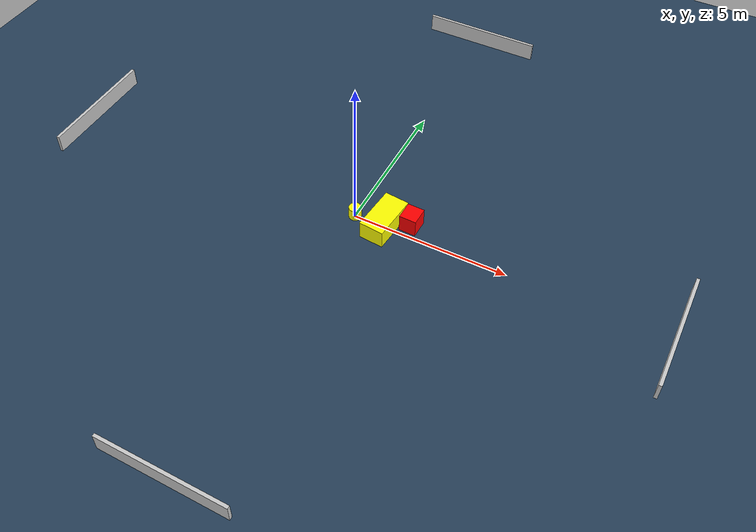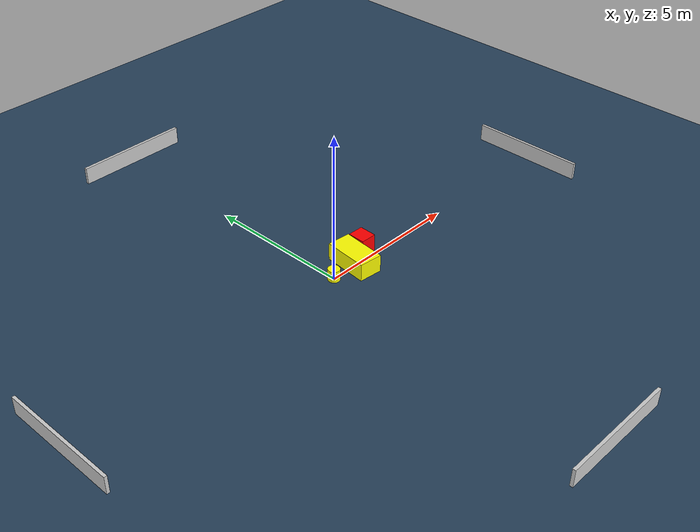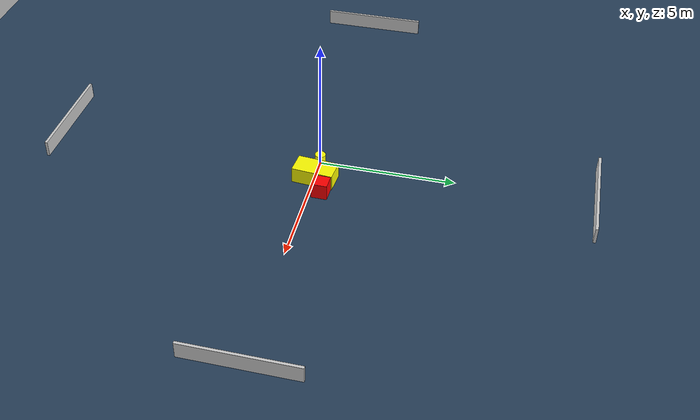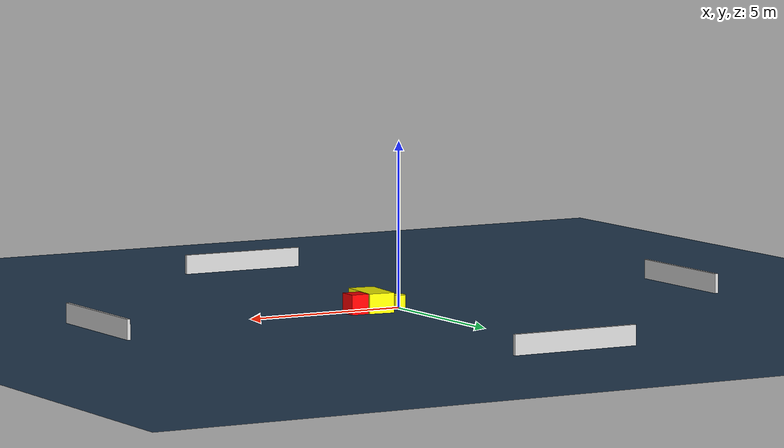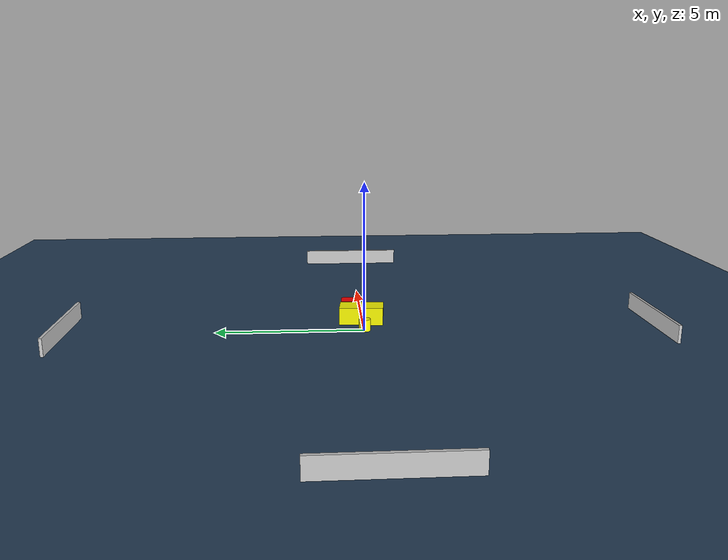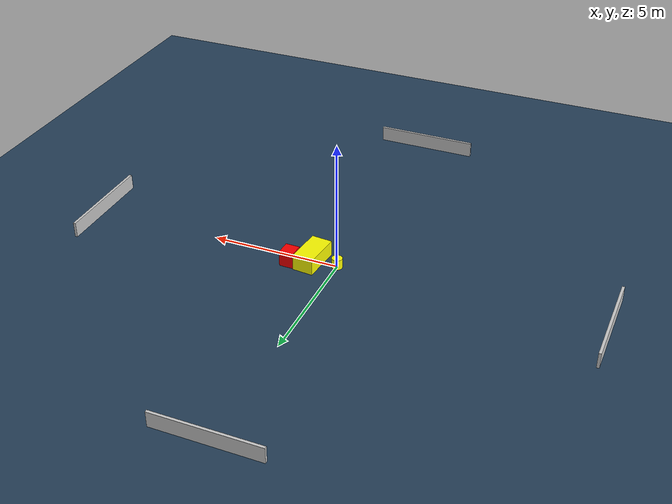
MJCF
<?xml version="1.0" ?>
<mujoco model="generated_environment">
  <option timestep="0.01" integrator="RK4" cone="elliptic"/>
  <default>
    <geom density="1"/>
  </default>
  <asset>
    <texture builtin="gradient" height="3072" name="skybox" rgb1="0.3 0.5 0.7" rgb2="0 0 0" type="skybox" width="512"/>
    <texture builtin="checker" height="300" name="groundplane" rgb1="0.2 0.3 0.4" rgb2="0.1 0.2 0.3" type="2d" width="300"/>
    <material name="groundplane" reflectance="0.2" texrepeat="5 5" texture="groundplane"/>
  </asset>
  <worldbody>
    <light dir="0 0 -1" directional="true" pos="0 0 1.5"/>
    <geom condim="3" friction="0.5 0.005 0.001" material="groundplane" name="floor" pos="0 0 0" size="0 0 0.05" type="plane"/>
    <body name="walls">
      <geom name="wall_1" condim="4" pos="-10.0 0.0 0.3" rgba="0.800000011920929 0.800000011920929 0.800000011920929 1.0" size="0.05 2.0 0.3" type="box"/>
      <geom name="wall_2" condim="4" pos="10.0 0.0 0.3" rgba="0.800000011920929 0.800000011920929 0.800000011920929 1.0" size="0.05 2.0 0.3" type="box"/>
      <geom name="wall_3" condim="4" pos="0.0 -10.0 0.3" rgba="0.800000011920929 0.800000011920929 0.800000011920929 1.0" size="2.0 0.05 0.3" type="box"/>
      <geom name="wall_4" condim="4" pos="0.0 10.0 0.3" rgba="0.800000011920929 0.800000011920929 0.800000011920929 1.0" size="2.0 0.05 0.3" type="box"/>
    </body>
    <body name="robot">
      <joint name="joint_x" type="slide" pos="0 0 0" axis="1 0 0"/>
      <joint name="joint_y" type="slide" pos="0 0 0" axis="0 1 0"/>
      <geom name="robot" type="cylinder" pos="0.0 0.0 0.2" size="0.2 0.2 0.0" mass="5.0" friction="1.0 0.005 0.0001" condim="4" rgba="1.0 1.0 0.0 1.0"/>
    </body>
    <body name="obstacle_1_movable">
      <geom name="obstacle_1_movable" condim="4" pos="0.974227471522776 0.04719190343154297 0.3" euler="0 0 174.68844495878906" friction="0.0 0.005 0.001" rgba="1.0 1.0 0.0 1.0" size="0.4009628984196697 0.7560240931750768 0.3" type="box" mass="0.1"/>
      <joint type="free"/>
    </body>
    <body name="obstacle_2_static">
      <geom name="obstacle_2_static" condim="4" pos="1.7233454786533535 0.4294558485395796 0.3" euler="0 0 178.7303632394966" friction="0.0 0.005 0.001" rgba="1.0 0.0 0.0 1.0" size="0.27246600001092186 0.29666511760125486 0.3" type="box"/>
    </body>
  </worldbody>
  <actuator>
    <motor name="actuator_x" joint="joint_x" gear="1" ctrlrange="-1 1"/>
    <motor name="actuator_y" joint="joint_y" gear="1" ctrlrange="-1 1"/>
  </actuator>
</mujoco>
